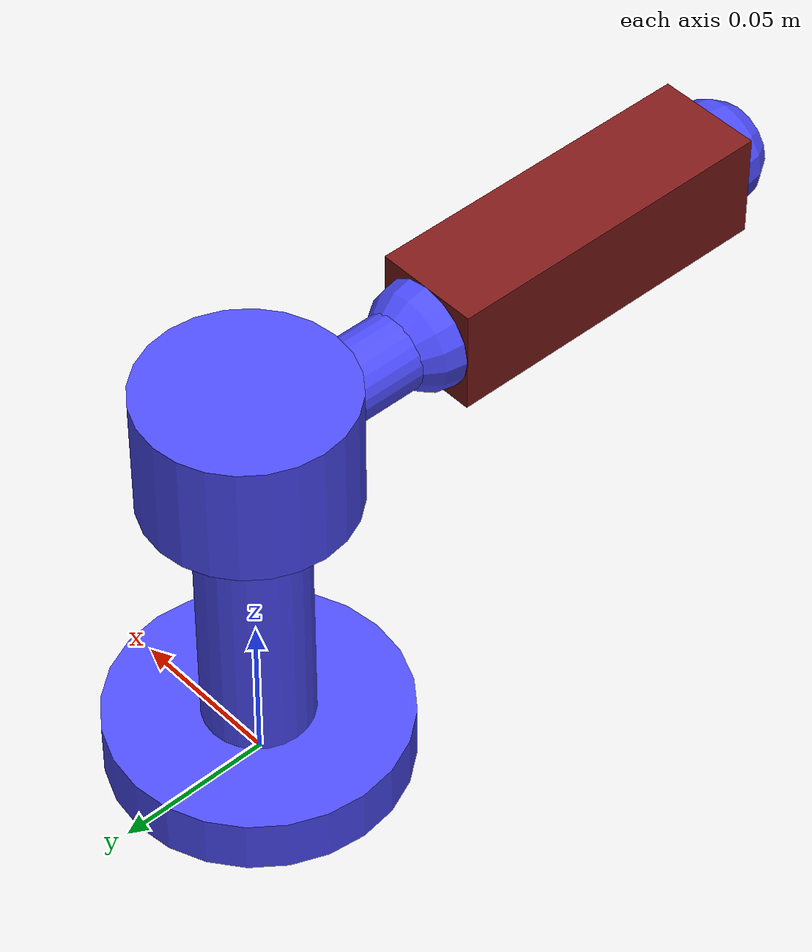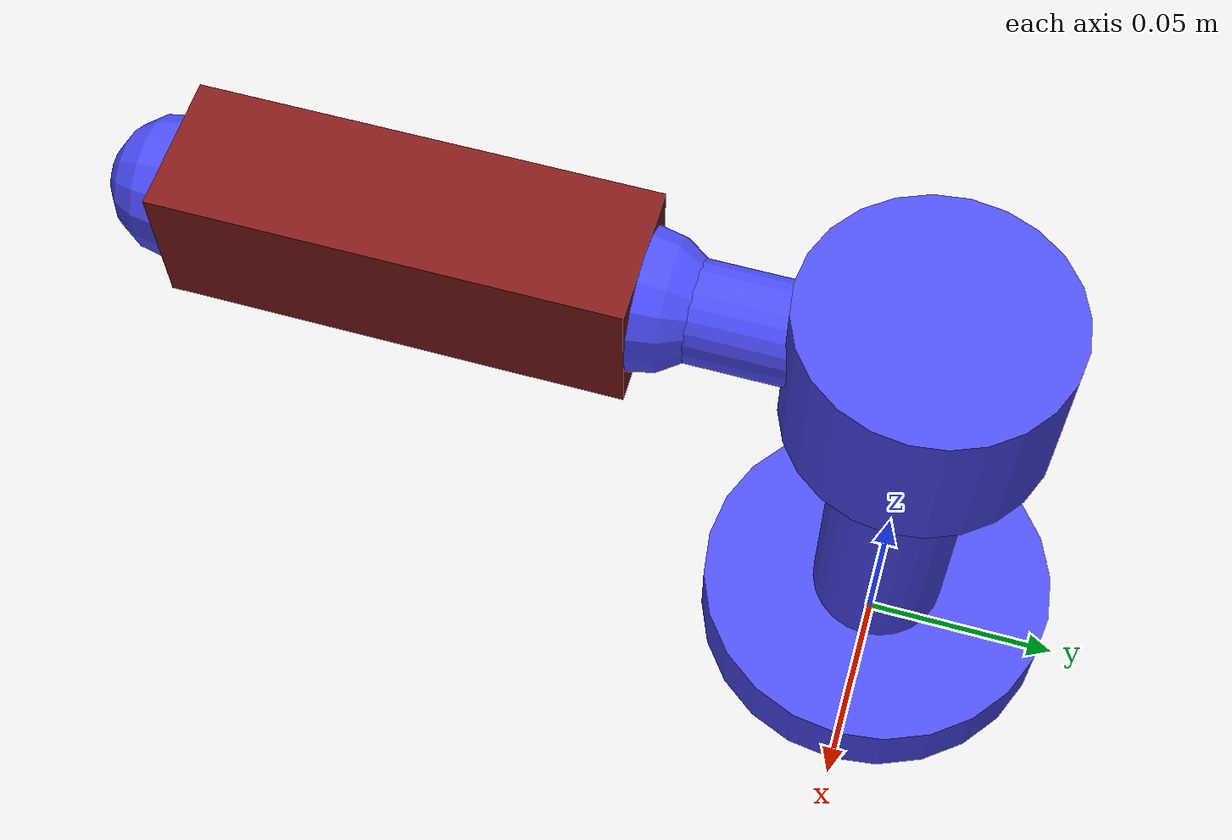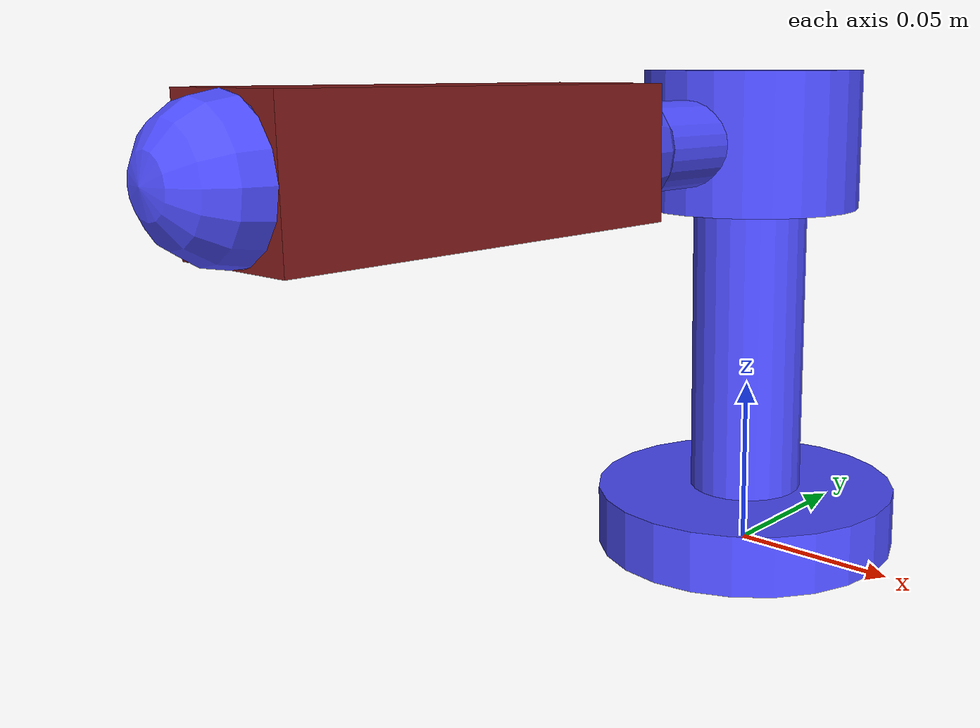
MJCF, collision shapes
<mujoco>
    <compiler angle="radian" inertiafromgeom="auto" inertiagrouprange="4 5"/>
    <asset>
        <texture name="T_fauc_met" type="cube" file="../textures/metal2.png"/>

        <material name="faucet_col" rgba="0.3 0.3 1.0 0.5" shininess="0" specular="0"/>
        <material name="faucet_white" rgba=".75 .75 .75 1" shininess="1" reflectance=".7" specular=".5"/>
        <material name="faucet_red" rgba=".5 .1 .1 1" shininess="1" reflectance=".7" specular=".5"/>

        <material name="faucet_metal" rgba=".7 .7 .7 1" texture="T_fauc_met" shininess="1" reflectance="1" specular=".5"/>

        <mesh file="../objects/meshes/faucet/faucetbase.stl" name="faucetbase"/>
        <mesh file="../objects/meshes/faucet/faucethandle1.stl" name="faucethandle1"/>
        <mesh file="../objects/meshes/faucet/faucethead.stl" name="faucethead"/>
    </asset>

    <default>

      <default class="faucet_base">
          <joint armature="0.001" damping="2" limited="true"/>
          <geom conaffinity="0" contype="0" group="1" type="mesh"/>
          <position ctrllimited="true" ctrlrange="0 1.57"/>
          <default class="faucet_viz">
              <geom condim="4" type="mesh"/>
          </default>
          <default class="faucet_col">
              <geom conaffinity="1" condim="3" contype="1" group="4" material="faucet_col" solimp="0.99 0.99 0.01" solref="0.01 1"/>
          </default>
      </default>
    </default>

    <worldbody>
        <body name="faucetBase" pos="0 0 0">
            <body childclass="faucet_base">
                <body name="faucet_link">
                    <geom material="faucet_metal" mesh="faucetbase" pos="0 0 0.088"/>
                    <geom class="faucet_col" pos="0 0 0.009" size="0.046 0.009" type="cylinder"/>
                    <geom class="faucet_col" pos="0 0 0.061" size="0.017 0.044" type="cylinder"/>
                    <body name="faucet_link2" pos="0 0 0.124">
                        <joint name="knob_Joint_1" type="hinge" range="-1.57 1.57" axis="0 0 1"/>
                        <geom material="faucet_metal" euler="1.57 0 0" mesh="faucethandle1" pos="0 -0.06 0.001"/>
                        <geom material="faucet_metal" mesh="faucethead" pos="0 0 0.001"/>
                        <geom name='end' material="faucet_red" euler="1.57 0 0" pos="0 -0.12 0.001" size="0.017 .017 0.055" type="box"/>

                        <geom class="faucet_col" euler="1.57 0 0" pos="0 -0.05 0.001" size="0.012 0.021" type="cylinder"/>
                        <geom class="faucet_col" euler="1.57 0 0" pos="0 -0.12 0.001" size="0.017 0.055" type="capsule"/>
                        <geom class="faucet_col" pos="0 0 0.001" size="0.032 0.02" type="cylinder"/>

                        <body name="handleStartClose" pos="0.015 -0.175 0"></body>
                        <body name="handleStartOpen" pos="-0.015 -0.175 0"></body>
                    </body>
                </body>
            </body>
            <body name="goal_close" pos="-0.175 -0.015 0.125"/>
            <body name="goal_open"  pos=" 0.175 -0.015 0.125"/>
        </body>

</worldbody>
</mujoco>
